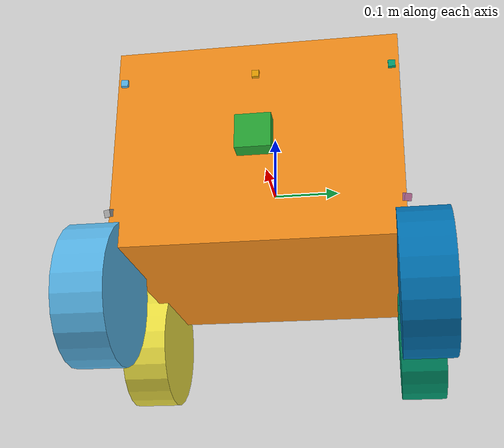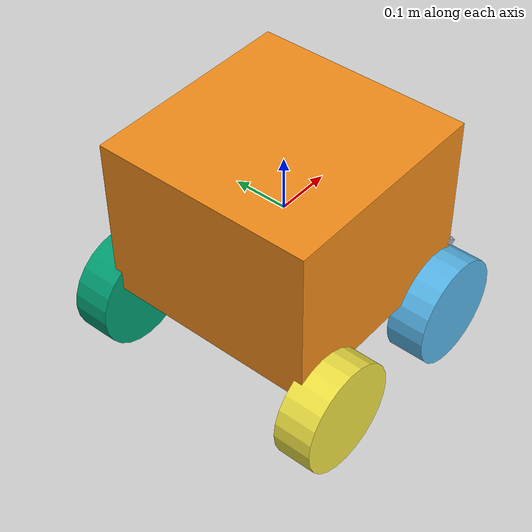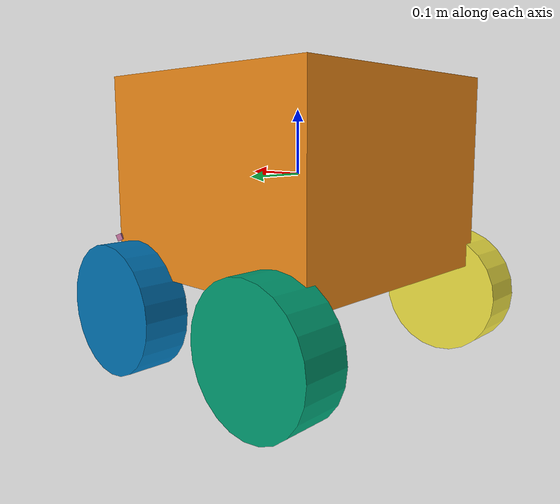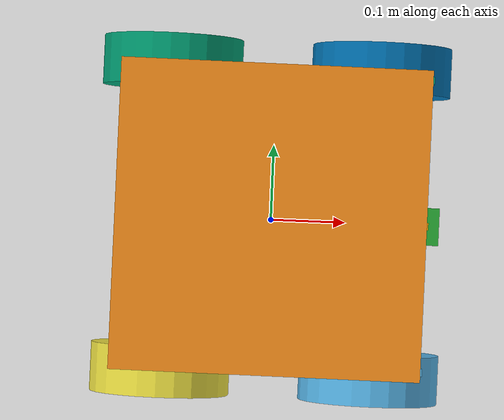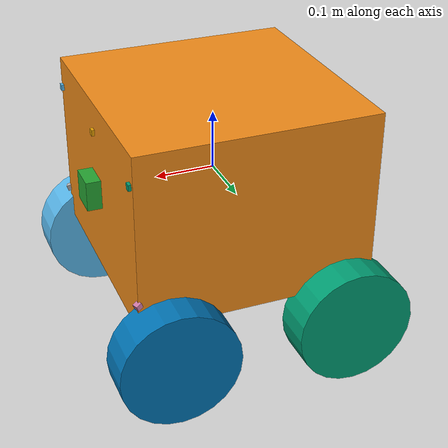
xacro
<?xml version='1.0'?>

<robot name="myrobot" xmlns:xacro="http://www.ros.org/wiki/xacro">

  <xacro:property name="cameraSize" value="0.05"/>
  <xacro:property name="cameraMass" value="0.1"/>

  <xacro:include filename="$(find mybot_description)/urdf/umic.gazebo" />
  <xacro:include filename="$(find mybot_description)/urdf/materials.xacro" />
  <!--xacro:include filename="$(find mybot_description)/urdf/macros.xacro" /-->

  <link name='chassis'>
    <pose>0 0 0.1 0 0 0</pose>

    <inertial>
      <mass value="10.0"/>
      <origin xyz="0.0 0 0.4" rpy=" 0 0 0"/>
      <inertia
          ixx="0.5" ixy="0" ixz="0"
          iyy="1.0" iyz="0"
          izz="0.1"
      />
    </inertial>

    <collision name='collision'>
      <geometry>
        <box size=".4 .4 .3"/>
      </geometry>
    </collision>

    <visual name='chassis_visual'>
      <origin xyz="0 0 0" rpy=" 0 0 0"/>
      <geometry>
        <box size=".4 .4 .3"/>
      </geometry>
    </visual>

  </link>

  <!--link name="left_front_wheel"-->
    <!--origin xyz="0.1 0.13 0.1" rpy="0 1.5707 1.5707"/-->

  <link name="left_wheel">
    <!--origin xyz="0.1 0.13 0.1" rpy="0 1.5707 1.5707"/-->
    <collision name="collision">
      <origin xyz="0 0 0" rpy="0 1.5707 1.5707"/>
      <geometry>
        <cylinder radius="0.1" length="0.07"/>
      </geometry>
<surface>
        <friction>
          <ode>
            <mu>0.01</mu>
            <mu2>0.01</mu2>
          </ode>
        </friction>
      </surface>
    </collision>
    <visual name="left_wheel_visual">
      <origin xyz="0 0 0" rpy="0 1.5707 1.5707"/>
      <geometry>
        <cylinder radius="0.1" length="0.07"/>
      </geometry>
    </visual>
    <inertial>
      <origin xyz="0 0 0" rpy="0 1.5707 1.5707"/>
      <mass value="5"/>
      <cylinder_inertia m="5" r="0.1" h="0.05"/>
      <inertia
        ixx="1.0" ixy="0.0" ixz="0.0"
        iyy="1.0" iyz="0.0"
        izz="1.0"/>
    </inertial>
  </link>

  <link name="back_left_wheel">
    <!--origin xyz="0.1 -0.13 0.1" rpy="0 1.5707 1.5707"/-->
    <collision name="collision">
      <origin xyz="0 0 0" rpy="0 1.5707 1.5707"/>
      <geometry>
        <cylinder radius="0.1" length="0.07"/>
      </geometry>
<surface>
        <friction>
          <ode>
            <mu>0.01</mu>
            <mu2>0.01</mu2>
          </ode>
        </friction>
      </surface>
    </collision>
    <visual name="right_wheel_visual">
      <origin xyz="0 0 0" rpy="0 1.5707 1.5707"/>
      <geometry>
        <cylinder radius="0.1" length="0.07"/>
      </geometry>
    </visual>
    <inertial>
      <origin xyz="0 0 0" rpy="0 1.5707 1.5707"/>
      <mass value="5"/>
      <cylinder_inertia m="5" r="0.1" h="0.05"/>
      <inertia
        ixx="1.0" ixy="0.0" ixz="0.0"
        iyy="1.0" iyz="0.0"
        izz="1.0"/>
    </inertial>
  </link>

<link name="back_right_wheel">
    <!--origin xyz="0.1 -0.13 0.1" rpy="0 1.5707 1.5707"/-->
    <collision name="collision">
      <origin xyz="0 0 0" rpy="0 1.5707 1.5707"/>
      <geometry>
        <cylinder radius="0.1" length="0.07"/>
      </geometry>
<surface>
        <friction>
          <ode>
            <mu>0.01</mu>
            <mu2>0.01</mu2>
          </ode>
        </friction>
      </surface>
    </collision>
    <visual name="right_wheel_visual">
      <origin xyz="0 0 0" rpy="0 1.5707 1.5707"/>
      <geometry>
        <cylinder radius="0.1" length="0.07"/>
      </geometry>
    </visual>
    <inertial>
      <origin xyz="0 0 0" rpy="0 1.5707 1.5707"/>
      <mass value="5"/>
      <cylinder_inertia m="5" r="0.1" h="0.05"/>
      <inertia
        ixx="1.0" ixy="0.0" ixz="0.0"
        iyy="1.0" iyz="0.0"
        izz="1.0"/>
    </inertial>
  </link>

  <link name="right_wheel">
    <!--origin xyz="0.1 -0.13 0.1" rpy="0 1.5707 1.5707"/-->
    <collision name="collision">
      <origin xyz="0 0 0" rpy="0 1.5707 1.5707"/>
      <geometry>
        <cylinder radius="0.1" length="0.05"/>
      </geometry>
<surface>
        <friction>
          <ode>
            <mu>1</mu>
            <mu2>1</mu2>
          </ode>
        </friction>
      </surface>
    </collision>
    <visual name="right_wheel_visual">
      <origin xyz="0 0 0" rpy="0 1.5707 1.5707"/>
      <geometry>
        <cylinder radius="0.1" length="0.07"/>
      </geometry>
    </visual>
    <inertial>
      <origin xyz="0 0 0" rpy="0 1.5707 1.5707"/>
      <mass value="5"/>
      <cylinder_inertia m="5" r="0.1" h="0.05"/>
      <inertia
        ixx="1.0" ixy="0.0" ixz="0.0"
        iyy="1.0" iyz="0.0"
        izz="1.0"/>
    </inertial>
  </link>

  <joint type="continuous" name="left_wheel_hinge">
    <origin xyz="0.15 0.22 -0.2" rpy="0 0 0"/>
    <child link="right_wheel"/>
    <parent link="chassis"/>
    <axis xyz="0 1 0" rpy="0 0 0"/>
    <limit effort="100" velocity="100"/>
    <joint_properties damping="0.0" friction="0.0"/>
  </joint>

  <joint type="continuous" name="right_wheel_hinge">
    <origin xyz="0.15 -0.22 -0.2" rpy="0 0 0"/>
    <child link="left_wheel"/>
    <parent link="chassis"/>
    <axis xyz="0 1 0" rpy="0 0 0"/>
    <limit effort="100" velocity="100"/>
    <joint_properties damping="0.0" friction="0.0"/>
  </joint>

  <joint type="continuous" name="back_left_hinge">
    <origin xyz="-0.15 0.22 -0.2" rpy="0 0 0"/>
    <child link="back_left_wheel"/>
    <parent link="chassis"/>
    <axis xyz="0 1 0" rpy="0 0 0"/>
    <limit effort="100" velocity="100"/>
    <joint_properties damping="0.0" friction="0.0"/>
  </joint>

<joint type="continuous" name="back_right_hinge">
    <origin xyz="-0.15 -0.22 -0.2" rpy="0 0 0"/>
    <child link="back_right_wheel"/>
    <parent link="chassis"/>
    <axis xyz="0 1 0" rpy="0 0 0"/>
    <limit effort="100" velocity="100"/>
    <joint_properties damping="0.0" friction="0.0"/>
  </joint>

 <link name="camera">
    <collision>
      <origin xyz="0 0 0" rpy="0 0 0"/>
      <geometry>
        <box size="${cameraSize} ${cameraSize} ${cameraSize}"/>
      </geometry>
    </collision>

    <visual>
      <origin xyz="0 0 0" rpy="0 0 0"/>
      <geometry>
        <box size="${cameraSize} ${cameraSize} ${cameraSize}"/>
      </geometry>
      <material name="green"/>
    </visual>

    <inertial>
      <mass value="${cameraMass}" />
      <origin xyz="0 0 0" rpy="0 0 0"/>
      <box_inertia m="${cameraMass}" x="${cameraSize}" y="${cameraSize}" z="${cameraSize}" />
      <inertia ixx="1e-6" ixy="0" ixz="0" iyy="1e-6" iyz="0" izz="1e-6" />
    </inertial>
  </link>

  <joint name="camera_joint" type="fixed">
    <axis xyz="0 1 0" />
    <origin xyz=".2 0 0" rpy="0 0 0"/>
    <parent link="chassis"/>
    <child link="camera"/>
  </joint>

<joint name="ir_front_joint_1" type="fixed">
    <axis xyz="0 1 0" />
    <origin rpy="0 0.39269908169  0.39269908169 " xyz="0.2 0.2 -0.1" />
    <parent link="chassis"/>
    <child link="base_ir_front_1"/>
</joint>

<link name="base_ir_front_1">
    <collision>
      <origin xyz="0 0 0" rpy="0 0 0"/>
      <geometry>
        <box size="0.01 0.01 0.01"/>
      </geometry>
    </collision>    <visual>
      <origin xyz="0 0 0" rpy="0 0 0"/>
      <geometry>
        <box size="0.01 0.01 0.01"/>
      </geometry>
    </visual>    <inertial>
      <mass value="1e-5" />
      <origin xyz="0 0 0" rpy="0 0 0"/>
      <inertia ixx="1e-6" ixy="0" ixz="0" iyy="1e-6" iyz="0"      izz="1e-6" />
    </inertial>
</link>

<joint name="ir_front_joint_2" type="fixed">
    <axis xyz="0 1 0" />
    <origin rpy="0 0.39269908169  -0.39269908169 " xyz="0.2 -0.2 -0.1" />
    <parent link="chassis"/>
    <child link="base_ir_front_2"/>
</joint>

<link name="base_ir_front_2">
    <collision>
      <origin xyz="0 0 0" rpy="0 0 0"/>
      <geometry>
        <box size="0.01 0.01 0.01"/>
      </geometry>
    </collision>    <visual>
      <origin xyz="0 0 0" rpy="0 0 0"/>
      <geometry>
        <box size="0.01 0.01 0.01"/>
      </geometry>
    </visual>    <inertial>
      <mass value="1e-5" />
      <origin xyz="0 0 0" rpy="0 0 0"/>
      <inertia ixx="1e-6" ixy="0" ixz="0" iyy="1e-6" iyz="0"      izz="1e-6" />
    </inertial>
</link>
<joint name="sonar_front_joint_1" type="fixed">
    <axis xyz="0 1 0" />
    <origin rpy="0 0 0" xyz="0.2 0 0.1" />
    <parent link="chassis"/>
    <child link="base_sonar_front_1"/>
</joint>

<link name="base_sonar_front_1">
    <collision>
      <origin xyz="0 0 0" rpy="0 0 0"/>
      <geometry>
        <box size="0.01 0.01 0.01"/>
      </geometry>
    </collision>    <visual>
      <origin xyz="0 0 0" rpy="0 0 0"/>
      <geometry>
        <box size="0.01 0.01 0.01"/>
      </geometry>
    </visual>    <inertial>
      <mass value="1e-5" />
      <origin xyz="0 0 0" rpy="0 0 0"/>
      <inertia ixx="1e-6" ixy="0" ixz="0" iyy="1e-6" iyz="0" izz="1e-6" />
    </inertial>
 </link>

<joint name="sonar_front_joint_2" type="fixed">
    <axis xyz="0 1 0" />
    <origin rpy="0 0 0" xyz="0.2 -0.19 0.1" />
    <parent link="chassis"/>
    <child link="base_sonar_front_2"/>
</joint>

<link name="base_sonar_front_2">
    <collision>
      <origin xyz="0 0 0" rpy="0 0 0"/>
      <geometry>
        <box size="0.01 0.01 0.01"/>
      </geometry>
    </collision>    <visual>
      <origin xyz="0 0 0" rpy="0 0 0"/>
      <geometry>
        <box size="0.01 0.01 0.01"/>
      </geometry>
    </visual>    <inertial>
      <mass value="1e-5" />
      <origin xyz="0 0 0" rpy="0 0 0"/>
      <inertia ixx="1e-6" ixy="0" ixz="0" iyy="1e-6" iyz="0" izz="1e-6" />
    </inertial>
 </link>

<joint name="sonar_front_joint_3" type="fixed">
    <axis xyz="0 1 0" />
    <origin rpy="0 0 0" xyz="0.2 0.19 0.1" />
    <parent link="chassis"/>
    <child link="base_sonar_front_3"/>
</joint>

<link name="base_sonar_front_3">
    <collision>
      <origin xyz="0 0 0" rpy="0 0 0"/>
      <geometry>
        <box size="0.01 0.01 0.01"/>
      </geometry>
    </collision>    <visual>
      <origin xyz="0 0 0" rpy="0 0 0"/>
      <geometry>
        <box size="0.01 0.01 0.01"/>
      </geometry>
    </visual>    <inertial>
      <mass value="1e-5" />
      <origin xyz="0 0 0" rpy="0 0 0"/>
      <inertia ixx="1e-6" ixy="0" ixz="0" iyy="1e-6" iyz="0" izz="1e-6" />
    </inertial>
 </link>

</robot>
